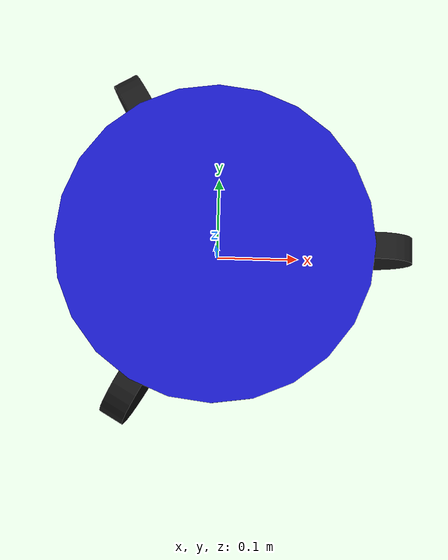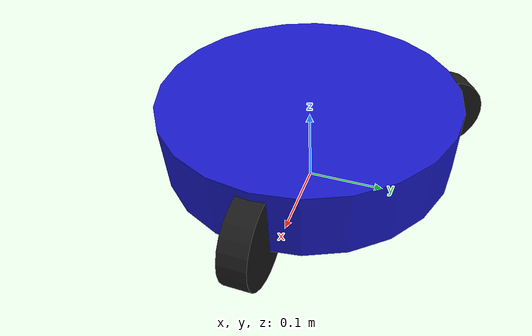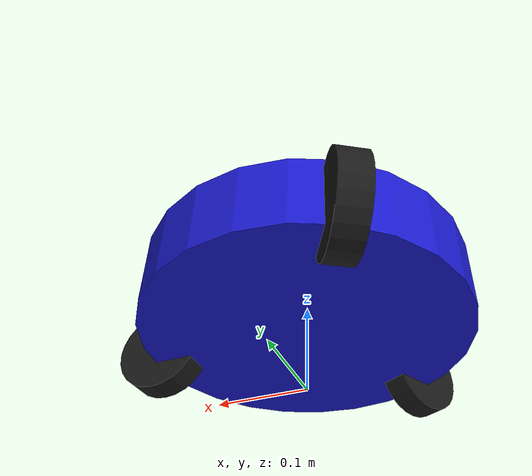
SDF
<?xml version="1.0" ?>
<sdf version="1.8">
  <model name="semantic_robot">
    <pose>0 0 0.1 0 0 0</pose>

    <!-- Base -->
    <link name="base_link">
      <inertial>
        <mass>2.0</mass>
        <inertia>
          <ixx>0.02</ixx><ixy>0</ixy><ixz>0</ixz>
          <iyy>0.02</iyy><iyz>0</iyz>
          <izz>0.04</izz>
        </inertia>
      </inertial>

      <visual name="base_visual">
        <geometry>
          <cylinder><radius>0.18</radius><length>0.08</length></cylinder>
        </geometry>
        <material>
          <ambient>0.1 0.1 0.8 1</ambient>
          <diffuse>0.1 0.1 0.8 1</diffuse>
        </material>
      </visual>

      <collision name="base_collision">
        <geometry>
          <cylinder><radius>0.18</radius><length>0.08</length></cylinder>
        </geometry>
      </collision>

      <!-- LiDAR -->
      <sensor name="lidar" type="gpu_lidar">
        <pose>0 0 0.08 0 0 0</pose>
        <always_on>true</always_on>
        <visualize>true</visualize>
        <update_rate>10</update_rate>
        <lidar>
          <scan>
            <horizontal>
              <samples>360</samples>
              <resolution>1</resolution>
              <min_angle>-3.14159</min_angle>
              <max_angle>3.14159</max_angle>
            </horizontal>
          </scan>
          <range>
            <min>0.12</min>
            <max>3.5</max>
            <resolution>0.01</resolution>
          </range>
        </lidar>
        <topic>/scan</topic>
      </sensor>

      <!-- Camera Front (0 degrees) -->
      <sensor name="camera_front" type="camera">
        <pose>0.18 0 0.05 0 0 0</pose>
        <always_on>true</always_on>
        <update_rate>10</update_rate>
        <visualize>true</visualize>
        <camera>
          <horizontal_fov>1.047</horizontal_fov>
          <image>
            <width>320</width>
            <height>240</height>
            <format>R8G8B8</format>
          </image>
          <clip><near>0.05</near><far>10</far></clip>
        </camera>
        <topic>/camera/front</topic>
      </sensor>

      <!-- Camera Left (120 degrees) -->
      <sensor name="camera_left" type="camera">
        <pose>-0.09 0.156 0.05 0 0 2.094</pose>
        <always_on>true</always_on>
        <update_rate>10</update_rate>
        <visualize>true</visualize>
        <camera>
          <horizontal_fov>1.047</horizontal_fov>
          <image>
            <width>320</width>
            <height>240</height>
            <format>R8G8B8</format>
          </image>
          <clip><near>0.05</near><far>10</far></clip>
        </camera>
        <topic>/camera/left</topic>
      </sensor>

      <!-- Camera Right (240 degrees) -->
      <sensor name="camera_right" type="camera">
        <pose>-0.09 -0.156 0.05 0 0 -2.094</pose>
        <always_on>true</always_on>
        <update_rate>10</update_rate>
        <visualize>true</visualize>
        <camera>
          <horizontal_fov>1.047</horizontal_fov>
          <image>
            <width>320</width>
            <height>240</height>
            <format>R8G8B8</format>
          </image>
          <clip><near>0.05</near><far>10</far></clip>
        </camera>
        <topic>/camera/right</topic>
      </sensor>

    </link>

    <!-- Wheel 1 — Front (0 degrees) -->
    <link name="wheel_0">
      <pose>0.18 0 -0.02 1.5707 0 0</pose>
      <inertial>
        <mass>0.15</mass>
        <inertia>
          <ixx>0.001</ixx><ixy>0</ixy><ixz>0</ixz>
          <iyy>0.001</iyy><iyz>0</iyz>
          <izz>0.001</izz>
        </inertia>
      </inertial>
      <visual name="visual">
        <geometry>
          <cylinder><radius>0.05</radius><length>0.03</length></cylinder>
        </geometry>
        <material><ambient>0.1 0.1 0.1 1</ambient></material>
      </visual>
      <collision name="collision">
        <geometry>
          <cylinder><radius>0.05</radius><length>0.03</length></cylinder>
        </geometry>
      </collision>
    </link>

    <!-- Wheel 2 — Left rear (120 degrees) -->
    <link name="wheel_1">
      <pose>-0.09 0.156 -0.02 1.5707 0 2.094</pose>
      <inertial>
        <mass>0.15</mass>
        <inertia>
          <ixx>0.001</ixx><ixy>0</ixy><ixz>0</ixz>
          <iyy>0.001</iyy><iyz>0</iyz>
          <izz>0.001</izz>
        </inertia>
      </inertial>
      <visual name="visual">
        <geometry>
          <cylinder><radius>0.05</radius><length>0.03</length></cylinder>
        </geometry>
        <material><ambient>0.1 0.1 0.1 1</ambient></material>
      </visual>
      <collision name="collision">
        <geometry>
          <cylinder><radius>0.05</radius><length>0.03</length></cylinder>
        </geometry>
      </collision>
    </link>

    <!-- Wheel 3 — Right rear (240 degrees) -->
    <link name="wheel_2">
      <pose>-0.09 -0.156 -0.02 1.5707 0 -2.094</pose>
      <inertial>
        <mass>0.15</mass>
        <inertia>
          <ixx>0.001</ixx><ixy>0</ixy><ixz>0</ixz>
          <iyy>0.001</iyy><iyz>0</iyz>
          <izz>0.001</izz>
        </inertia>
      </inertial>
      <visual name="visual">
        <geometry>
          <cylinder><radius>0.05</radius><length>0.03</length></cylinder>
        </geometry>
        <material><ambient>0.1 0.1 0.1 1</ambient></material>
      </visual>
      <collision name="collision">
        <geometry>
          <cylinder><radius>0.05</radius><length>0.03</length></cylinder>
        </geometry>
      </collision>
    </link>

    <!-- Wheel joints -->
    <joint name="wheel_0_joint" type="revolute">
      <parent>base_link</parent>
      <child>wheel_0</child>
      <axis>
        <xyz>0 0 1</xyz>
        <limit><lower>-1e16</lower><upper>1e16</upper></limit>
      </axis>
    </joint>

    <joint name="wheel_1_joint" type="revolute">
      <parent>base_link</parent>
      <child>wheel_1</child>
      <axis>
        <xyz>0 0 1</xyz>
        <limit><lower>-1e16</lower><upper>1e16</upper></limit>
      </axis>
    </joint>

    <joint name="wheel_2_joint" type="revolute">
      <parent>base_link</parent>
      <child>wheel_2</child>
      <axis>
        <xyz>0 0 1</xyz>
        <limit><lower>-1e16</lower><upper>1e16</upper></limit>
      </axis>
    </joint>

    <!-- Holonomic drive plugin -->
    <plugin
      filename="gz-sim-triggered-publisher-system"
      name="gz::sim::systems::TriggeredPublisher">
    </plugin>

    <plugin
      filename="gz-sim-diff-drive-system"
      name="gz::sim::systems::DiffDrive">
      <left_joint>wheel_1_joint</left_joint>
      <right_joint>wheel_2_joint</right_joint>
      <wheel_separation>0.312</wheel_separation>
      <wheel_radius>0.05</wheel_radius>
      <odom_publish_frequency>10</odom_publish_frequency>
      <topic>cmd_vel</topic>
      <odom_topic>odom</odom_topic>
      <frame_id>odom</frame_id>
      <child_frame_id>base_link</child_frame_id>
    </plugin>

  </model>
</sdf>
